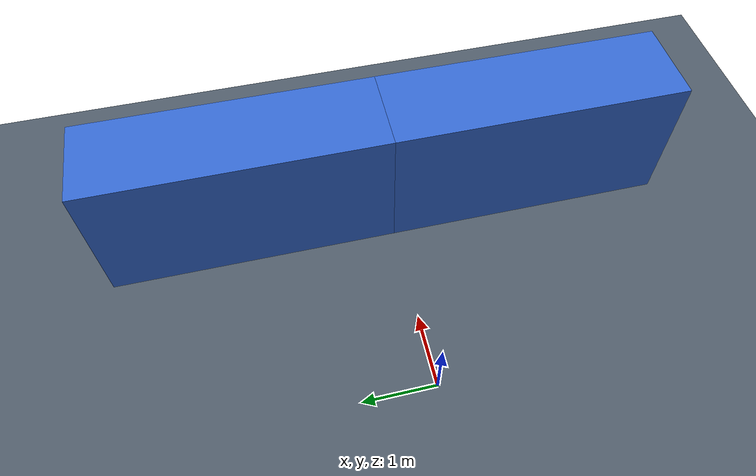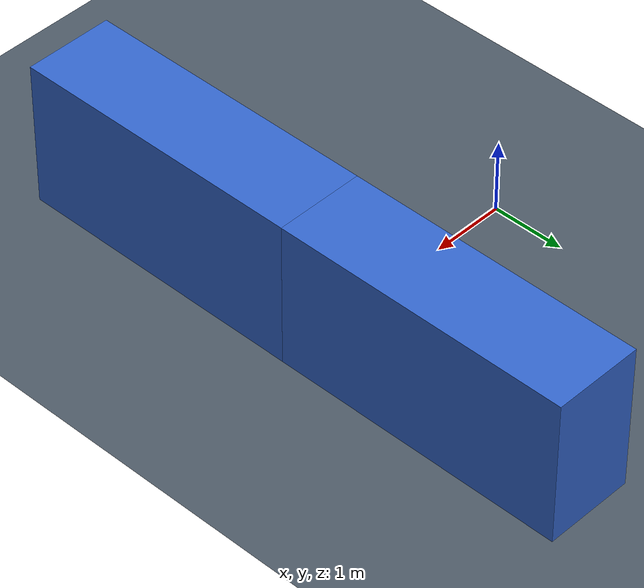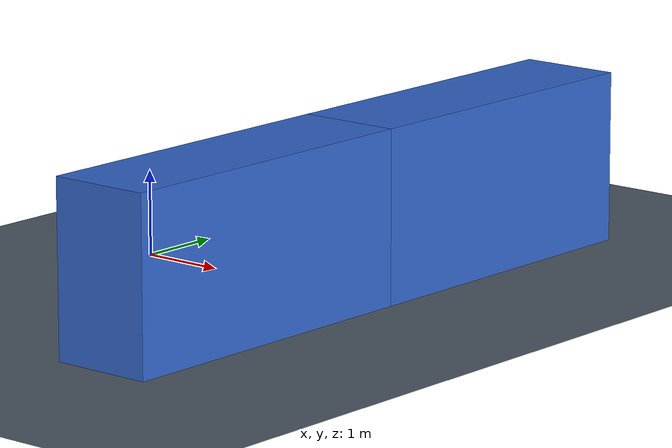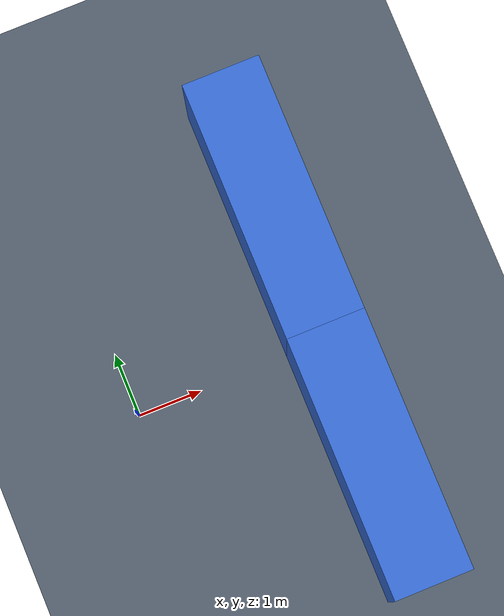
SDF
<?xml version="1.0" ?>
<sdf version="1.8">
  <world name="synq_warehouse">
    <physics name="1ms" type="ignored">
      <max_step_size>0.001</max_step_size>
      <real_time_factor>1.0</real_time_factor>
    </physics>

    <plugin filename="gz-sim-physics-system" name="gz::sim::systems::Physics"/>
    <plugin filename="gz-sim-user-commands-system" name="gz::sim::systems::UserCommands"/>
    <plugin filename="gz-sim-scene-broadcaster-system" name="gz::sim::systems::SceneBroadcaster"/>
    <plugin filename="gz-sim-sensors-system" name="gz::sim::systems::Sensors">
      <render_engine>ogre2</render_engine>
    </plugin>

    <!-- Lighting -->
    <light type="directional" name="warehouse_ambient">
      <cast_shadows>true</cast_shadows>
      <pose>0 0 10 0 0 0</pose>
      <diffuse>0.8 0.8 0.8 1</diffuse>
      <specular>0.2 0.2 0.2 1</specular>
      <direction>-0.5 0.1 -0.9</direction>
    </light>

    <!-- Ground Floor -->
    <model name="ground_plane">
      <static>true</static>
      <link name="link">
        <collision name="collision">
          <geometry>
            <plane>
              <normal>0 0 1</normal>
              <size>50 50</size>
            </plane>
          </geometry>
          <surface>
            <friction>
              <ode>
                <mu>100.0</mu>
                <mu2>50.0</mu2>
              </ode>
            </friction>
          </surface>
        </collision>
        <visual name="visual">
          <geometry>
            <plane>
              <normal>0 0 1</normal>
              <size>50 50</size>
            </plane>
          </geometry>
          <material>
            <ambient>0.25 0.28 0.32 1</ambient>
            <diffuse>0.3 0.35 0.4 1</diffuse>
          </material>
        </visual>
      </link>
    </model>

    <!-- Standard Warehouse Storage Rack Pod A -->
    <model name="rack_pod_A">
      <static>true</static>
      <pose>3.0 2.0 1.0 0 0 0</pose>
      <link name="link">
        <collision name="collision">
          <geometry><box><size>1.2 4.0 2.0</size></box></geometry>
        </collision>
        <visual name="visual">
          <geometry><box><size>1.2 4.0 2.0</size></box></geometry>
          <material>
            <ambient>0.2 0.4 0.8 1</ambient>
            <diffuse>0.2 0.4 0.8 1</diffuse>
          </material>
        </visual>
      </link>
    </model>

    <!-- Standard Warehouse Storage Rack Pod B -->
    <model name="rack_pod_B">
      <static>true</static>
      <pose>3.0 -2.0 1.0 0 0 0</pose>
      <link name="link">
        <collision name="collision">
          <geometry><box><size>1.2 4.0 2.0</size></box></geometry>
        </collision>
        <visual name="visual">
          <geometry><box><size>1.2 4.0 2.0</size></box></geometry>
          <material>
            <ambient>0.2 0.4 0.8 1</ambient>
            <diffuse>0.2 0.4 0.8 1</diffuse>
          </material>
        </visual>
      </link>
    </model>

  </world>
</sdf>
